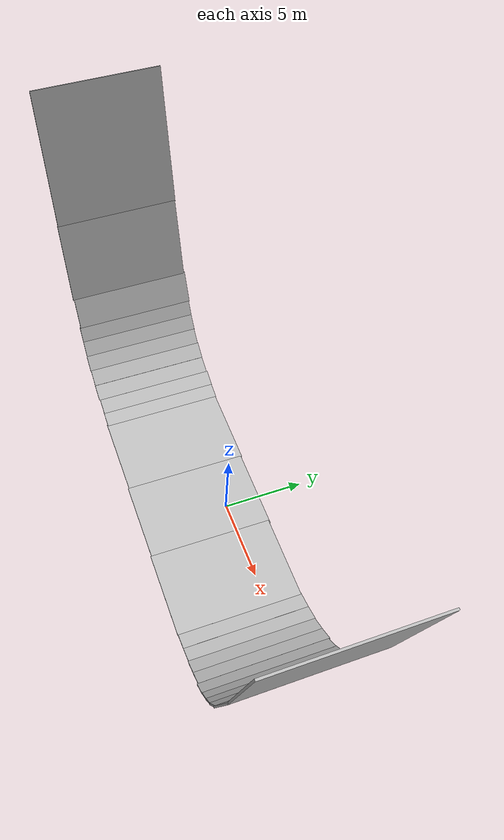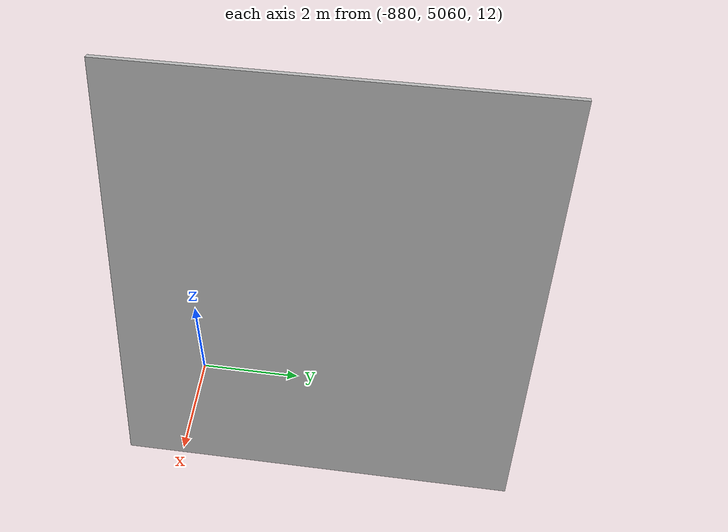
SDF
<sdf version="1.7">
 <world name="default">
  <scene>
   <grid>0</grid>
   <ambient>0.4 0.4 0.4 1</ambient>
   <background>0.7 0.7 0.7 1</background>
   <shadows>1</shadows>
  </scene>
  <light name="sun" type="directional">
   <pose>0 0 10 0 -0 0</pose>
   <diffuse>0.8 0.8 0.8 1</diffuse>
   <specular>0.2 0.2 0.2 1</specular>
   <attenuation>
    <range>1000</range>
    <constant>0.9</constant>
    <linear>0.01</linear>
    <quadratic>0.001</quadratic>
   </attenuation>
   <direction>-0.5 0.1 -0.9</direction>
   <spot><inner_angle>0</inner_angle><outer_angle>0</outer_angle><falloff>0</falloff></spot>
  </light>
  <model name="my_robot">
   <link name="base_footprint">
    <inertial>
     <mass>50</mass>
     <inertia><ixx>50</ixx><ixy>0</ixy><ixz>0</ixz><iyy>50</iyy><iyz>0</iyz><izz>50</izz></inertia>
    </inertial>
    <collision name="base_footprint_fixed_joint_lump__base_link_collision">
     <geometry><cylinder><length>0.3</length><radius>1</radius></cylinder></geometry>
    </collision>
    <visual name="base_footprint_visual">
     <geometry><cylinder><length>0.3</length><radius>1</radius></cylinder></geometry>
    </visual>
    <visual name="base_footprint_fixed_joint_lump__base_link_visual_1">
     <geometry><cylinder><length>0.3</length><radius>1</radius></cylinder></geometry>
    </visual>
   </link>
   <static>0</static>
   <plugin name="object_controller" filename="libgazebo_ros_planar_move.so">
    <commandTopic>cmd_vel</commandTopic>
    <odometryTopic>odom</odometryTopic>
    <odometryFrame>odom</odometryFrame>
    <odometryRate>20.0</odometryRate>
    <robotBaseFrame>base_footprint</robotBaseFrame>
   </plugin>
  </model>
  <model name="ground">
   <link name="body">
    <collision name="geom">
     <geometry><plane><normal>0 0 1</normal><size>1 1</size></plane></geometry>
     <surface><friction><ode><mu>100</mu><mu2>50</mu2></ode></friction></surface>
    </collision>
   </link>
   <static>1</static>
  </model>
  <scene>
   <grid>0</grid>
   <ambient>0.4 0.4 0.4 1</ambient>
   <background>0.7 0.7 0.7 1</background>
   <shadows>1</shadows>
  </scene>
  <scene>
   <grid>0</grid>
   <ambient>0.4 0.4 0.4 1</ambient>
   <background>0.7 0.7 0.7 1</background>
   <shadows>1</shadows>
  </scene>
  <model name="box1">
   <static>1</static>
   <pose>-15.7971 -1.93894 16.0347 0 1.3 0</pose>
   <link name="link">
    <collision name="collision"><geometry><box><size>8 7.34 0.1</size></box></geometry></collision>
    <visual name="visual"><geometry><box><size>8 7.34 0.1</size></box></geometry></visual>
   </link>
  </model>
  <model name="box2">
   <static>1</static>
   <pose>-13.9546 -1.96365 9.86468 0 1.25 0</pose>
   <link name="link">
    <collision name="collision"><geometry><box><size>5 7.34 0.1</size></box></geometry></collision>
    <visual name="visual"><geometry><box><size>5 7.34 0.1</size></box></geometry></visual>
   </link>
  </model>
  <model name="box3">
   <static>1</static>
   <pose>-12.7345 -1.90568 6.70199 0 1.07879 0</pose>
   <link name="link">
    <collision name="collision"><geometry><box><size>2 7.34 0.1</size></box></geometry></collision>
    <visual name="visual"><geometry><box><size>2 7.34 0.1</size></box></geometry></visual>
   </link>
  </model>
  <model name="box4">
   <static>1</static>
   <pose>-12.0288 -1.95298 5.45892 0 1 0</pose>
   <link name="link">
    <collision name="collision"><geometry><box><size>1 7.34 0.1</size></box></geometry></collision>
    <visual name="visual"><geometry><box><size>1 7.34 0.1</size></box></geometry></visual>
   </link>
  </model>
  <gravity>0 0 -9.8</gravity>
  <magnetic_field>6e-06 2.3e-05 -4.2e-05</magnetic_field>
  <atmosphere type="adiabatic"/>
  <physics type="ode">
   <max_step_size>0.001</max_step_size>
   <real_time_factor>1</real_time_factor>
   <real_time_update_rate>1000</real_time_update_rate>
  </physics>
  <spherical_coordinates>
   <surface_model>EARTH_WGS84</surface_model>
   <latitude_deg>0</latitude_deg>
   <longitude_deg>0</longitude_deg>
   <elevation>0</elevation>
   <heading_deg>0</heading_deg>
  </spherical_coordinates>
  <model name="box4_clone">
   <static>1</static>
   <pose>-11.4372 -1.95416 4.6597 0 0.866937 0</pose>
   <link name="link">
    <collision name="collision"><geometry><box><size>1 7.34 0.1</size></box></geometry></collision>
    <visual name="visual"><geometry><box><size>1 7.34 0.1</size></box></geometry></visual>
   </link>
  </model>
  <model name="box4_clone_clone">
   <static>1</static>
   <pose>-10.7516 -1.97335 3.95794 0 0.731359 0</pose>
   <link name="link">
    <collision name="collision"><geometry><box><size>1 7.34 0.1</size></box></geometry></collision>
    <visual name="visual"><geometry><box><size>1 7.34 0.1</size></box></geometry></visual>
   </link>
  </model>
  <model name="box4_clone_clone_clone">
   <static>1</static>
   <pose>-9.98301 -1.94929 3.37654 0 0.581043 0</pose>
   <link name="link">
    <collision name="collision"><geometry><box><size>1 7.34 0.1</size></box></geometry></collision>
    <visual name="visual"><geometry><box><size>1 7.34 0.1</size></box></geometry></visual>
   </link>
  </model>
  <model name="box4_clone_clone_clone_clone">
   <static>1</static>
   <pose>-9.09861 -1.95741 2.88893 0 0.434816 0</pose>
   <link name="link">
    <collision name="collision"><geometry><box><size>1 7.34 0.1</size></box></geometry></collision>
    <visual name="visual"><geometry><box><size>1 7.34 0.1</size></box></geometry></visual>
   </link>
  </model>
  <model name="box4_clone_clone_clone_clone_clone">
   <static>1</static>
   <pose>-8.18948 -1.90732 2.50992 0 0.351337 0</pose>
   <link name="link">
    <collision name="collision"><geometry><box><size>1 7.34 0.1</size></box></geometry></collision>
    <visual name="visual"><geometry><box><size>1 7.34 0.1</size></box></geometry></visual>
   </link>
  </model>
  <model name="box4_clone_clone_clone_clone_clone_clone">
   <static>1</static>
   <pose>-7.31607 -1.92122 2.23645 0 0.252904 0</pose>
   <link name="link">
    <collision name="collision"><geometry><box><size>1 7.34 0.1</size></box></geometry></collision>
    <visual name="visual"><geometry><box><size>1 7.34 0.1</size></box></geometry></visual>
   </link>
  </model>
  <model name="box2_clone">
   <static>1</static>
   <pose>-4.45984 -1.96575 2.0894 -0.000283 0.012967 -0.003341</pose>
   <link name="link">
    <collision name="collision"><geometry><box><size>5 7.34 0.1</size></box></geometry></collision>
    <visual name="visual"><geometry><box><size>5 7.34 0.1</size></box></geometry></visual>
   </link>
  </model>
  <model name="box2_clone_clone">
   <static>1</static>
   <pose>0.49797 -2.03784 2.04694 -0.000283 0.004307 -0.003338</pose>
   <link name="link">
    <collision name="collision"><geometry><box><size>5 7.34 0.1</size></box></geometry></collision>
    <visual name="visual"><geometry><box><size>5 7.34 0.1</size></box></geometry></visual>
   </link>
  </model>
  <model name="box1_clone">
   <static>1</static>
   <pose>-878.821 5062.71 16.2056 0 1.3 0</pose>
   <link name="link">
    <collision name="collision"><geometry><box><size>8 7.34 0.1</size></box></geometry></collision>
    <visual name="visual"><geometry><box><size>8 7.34 0.1</size></box></geometry></visual>
   </link>
  </model>
  <model name="box2_clone_clone_clone">
   <static>1</static>
   <pose>5.29603 -2.10195 2.02777 -0.000283 0.004307 -0.003338</pose>
   <link name="link">
    <collision name="collision"><geometry><box><size>5 7.34 0.1</size></box></geometry></collision>
    <visual name="visual"><geometry><box><size>5 7.34 0.1</size></box></geometry></visual>
   </link>
  </model>
  <model name="box4_clone_clone_clone_clone_clone_clone_clone">
   <static>1</static>
   <pose>8.22064 -2.08831 2.12816 0 -0.259839 0</pose>
   <link name="link">
    <collision name="collision"><geometry><box><size>1 7.34 0.1</size></box></geometry></collision>
    <visual name="visual"><geometry><box><size>1 7.34 0.1</size></box></geometry></visual>
   </link>
  </model>
  <model name="box4_clone_clone_clone_clone_clone_clone_clone_clone">
   <static>1</static>
   <pose>9.12728 -2.08747 2.41192 0 -0.362159 0</pose>
   <link name="link">
    <collision name="collision"><geometry><box><size>1 7.34 0.1</size></box></geometry></collision>
    <visual name="visual"><geometry><box><size>1 7.34 0.1</size></box></geometry></visual>
   </link>
  </model>
  <model name="box4_clone_clone_clone_clone_clone_clone_clone_clone_clone">
   <static>1</static>
   <pose>9.99014 -2.11227 2.84344 0 -0.558533 0</pose>
   <link name="link">
    <collision name="collision"><geometry><box><size>1 7.34 0.1</size></box></geometry></collision>
    <visual name="visual"><geometry><box><size>1 7.34 0.1</size></box></geometry></visual>
   </link>
  </model>
  <model name="box4_clone_clone_clone_clone_clone_clone_clone_clone_clone_clone">
   <static>1</static>
   <pose>10.8041 -2.11744 3.39677 0 -0.634426 0</pose>
   <link name="link">
    <collision name="collision"><geometry><box><size>1 7.34 0.1</size></box></geometry></collision>
    <visual name="visual"><geometry><box><size>1 7.34 0.1</size></box></geometry></visual>
   </link>
  </model>
  <model name="box4_clone_clone_clone_clone_clone_clone_clone_clone_clone_clone_clone">
   <static>1</static>
   <pose>11.548 -2.17842 4.01308 0 -0.756697 0</pose>
   <link name="link">
    <collision name="collision"><geometry><box><size>1 7.34 0.1</size></box></geometry></collision>
    <visual name="visual"><geometry><box><size>1 7.34 0.1</size></box></geometry></visual>
   </link>
  </model>
  <model name="box4_clone_clone_clone_clone_clone_clone_clone_clone_clone_clone_clone_clone">
   <static>1</static>
   <pose>12.1799 -2.15575 4.69531 0 -0.90249 0</pose>
   <link name="link">
    <collision name="collision"><geometry><box><size>1 7.34 0.1</size></box></geometry></collision>
    <visual name="visual"><geometry><box><size>1 7.34 0.1</size></box></geometry></visual>
   </link>
  </model>
  <model name="box4_clone_clone_clone_clone_clone_clone_clone_clone_clone_clone_clone_clone_clone">
   <static>1</static>
   <pose>12.6634 -2.14306 5.38227 0 -1.01454 0</pose>
   <link name="link">
    <collision name="collision"><geometry><box><size>1 7.34 0.1</size></box></geometry></collision>
    <visual name="visual"><geometry><box><size>1 7.34 0.1</size></box></geometry></visual>
   </link>
  </model>
  <model name="box3_clone">
   <static>1</static>
   <pose>13.294 -2.15474 6.73099 0 -1.1916 0</pose>
   <link name="link">
    <collision name="collision"><geometry><box><size>2 7.34 0.1</size></box></geometry></collision>
    <visual name="visual"><geometry><box><size>2 7.34 0.1</size></box></geometry></visual>
   </link>
  </model>
  <model name="box2_clone_0">
   <static>1</static>
   <pose>14.2652 -2.21399 9.82165 3.14159 1.29269 3.14159</pose>
   <link name="link">
    <collision name="collision"><geometry><box><size>5 7.34 0.1</size></box></geometry></collision>
    <visual name="visual"><geometry><box><size>5 7.34 0.1</size></box></geometry></visual>
   </link>
  </model>
  <model name="box1_clone_0">
   <static>1</static>
   <pose>15.781 -2.18203 16.0208 3.14159 1.35334 3.14159</pose>
   <link name="link">
    <collision name="collision"><geometry><box><size>8 7.34 0.1</size></box></geometry></collision>
    <visual name="visual"><geometry><box><size>8 7.34 0.1</size></box></geometry></visual>
   </link>
  </model>
 </world>
</sdf>
